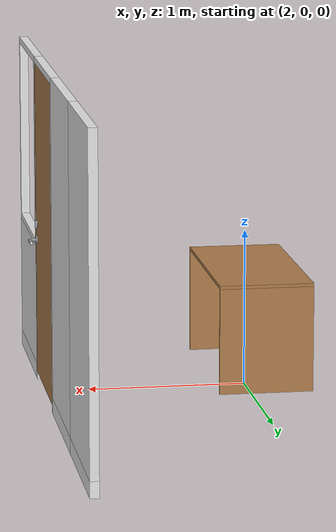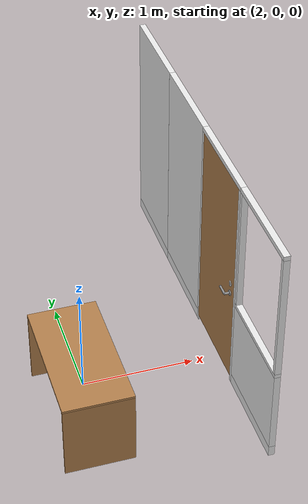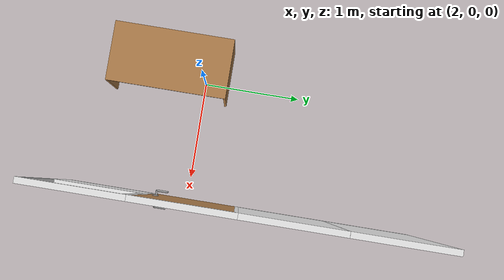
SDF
<sdf version="1.6">
 <world name="default">
  <model name="wall_front_d">
   <link name="link">
    <inertial>
     <mass>50</mass>
     <inertia><ixx>1</ixx><ixy>0</ixy><ixz>0</ixz><iyy>1</iyy><iyz>0</iyz><izz>1</izz></inertia>
    </inertial>
    <visual name="bottom_frame">
     <pose>0 0 0.05 0 -0 0</pose>
     <geometry><box><size>0.055 0.9 0.1</size></box></geometry>
     <material>
      <script><uri>model://base_materials/color/scripts</uri><name>hsr_color/white</name></script>
     </material>
    </visual>
    <collision name="collision_bottom_frame">
     <pose>0 0 0.05 0 -0 0</pose>
     <geometry><box><size>0.055 0.9 0.1</size></box></geometry>
    </collision>
    <visual name="wall">
     <pose>0 0 1.095 0 -0 0</pose>
     <geometry><box><size>0.055 0.9 1.99</size></box></geometry>
     <material>
      <script>
       <uri>model://base_materials/wall/scripts</uri>
       <uri>model://base_materials/wall/textures</uri>
       <name>wall/white_noise</name>
      </script>
     </material>
    </visual>
    <collision name="collision_wall">
     <pose>0 0 1.095 0 -0 0</pose>
     <geometry><box><size>0.055 0.9 1.99</size></box></geometry>
    </collision>
    <velocity_decay><linear>0</linear><angular>0</angular></velocity_decay>
   </link>
   <static>1</static>
   <pose>3.265 1.898 0 0 -0 0</pose>
  </model>
  <model name="wall_front_e">
   <link name="link">
    <inertial>
     <mass>50</mass>
     <inertia><ixx>1</ixx><ixy>0</ixy><ixz>0</ixz><iyy>1</iyy><iyz>0</iyz><izz>1</izz></inertia>
    </inertial>
    <visual name="bottom_frame">
     <pose>0 0 0.05 0 -0 0</pose>
     <geometry><box><size>0.055 0.9 0.1</size></box></geometry>
     <material>
      <script><uri>model://base_materials/color/scripts</uri><name>hsr_color/white</name></script>
     </material>
    </visual>
    <collision name="collision_bottom_frame">
     <pose>0 0 0.05 0 -0 0</pose>
     <geometry><box><size>0.055 0.9 0.1</size></box></geometry>
    </collision>
    <visual name="wall">
     <pose>0 0 1.095 0 -0 0</pose>
     <geometry><box><size>0.055 0.9 1.99</size></box></geometry>
     <material>
      <script>
       <uri>model://base_materials/wall/scripts</uri>
       <uri>model://base_materials/wall/textures</uri>
       <name>wall/white_noise</name>
      </script>
     </material>
    </visual>
    <collision name="collision_wall">
     <pose>0 0 1.095 0 -0 0</pose>
     <geometry><box><size>0.055 0.9 1.99</size></box></geometry>
    </collision>
    <velocity_decay><linear>0</linear><angular>0</angular></velocity_decay>
   </link>
   <static>1</static>
   <pose>3.265 0.9975 0 0 -0 0</pose>
  </model>
  <model name="wall_front_f">
   <link name="link">
    <pose>0 0.45 0 0 -0 0</pose>
    <inertial>
     <mass>50</mass>
     <inertia><ixx>1</ixx><ixy>0</ixy><ixz>0</ixz><iyy>1</iyy><iyz>0</iyz><izz>1</izz></inertia>
    </inertial>
    <visual name="door">
     <pose>0 0 1.05 0 -0 0</pose>
     <geometry><box><size>0.055 0.83 2</size></box></geometry>
     <material>
      <script><uri>model://base_materials/wood/scripts/wood.material</uri><name>base_materials/wood</name></script>
     </material>
    </visual>
    <collision name="collision_door">
     <pose>0 0 1.05 0 -0 0</pose>
     <geometry><box><size>0.055 0.83 2</size></box></geometry>
    </collision>
    <visual name="right_frame">
     <pose>0 0.4325 1.025 0 -0 0</pose>
     <geometry><box><size>0.055 0.035 2.05</size></box></geometry>
     <material>
      <script><uri>model://base_materials/color/scripts</uri><name>hsr_color/white</name></script>
     </material>
    </visual>
    <collision name="collision_right_frame">
     <pose>0 0.4325 1.025 0 -0 0</pose>
     <geometry><box><size>0.055 0.035 2.05</size></box></geometry>
    </collision>
    <visual name="left_frame">
     <pose>0 -0.4325 1.025 0 -0 0</pose>
     <geometry><box><size>0.055 0.035 2.05</size></box></geometry>
     <material>
      <script><uri>model://base_materials/color/scripts</uri><name>hsr_color/white</name></script>
     </material>
    </visual>
    <collision name="collision_left_frame">
     <pose>0 -0.4325 1.025 0 -0 0</pose>
     <geometry><box><size>0.055 0.035 2.05</size></box></geometry>
    </collision>
    <visual name="top_frame">
     <pose>0 0 2.07 0 -0 0</pose>
     <geometry><box><size>0.055 0.9 0.04</size></box></geometry>
     <material>
      <script><uri>model://base_materials/color/scripts</uri><name>hsr_color/white</name></script>
     </material>
    </visual>
    <collision name="collision_top_frame">
     <pose>0 0 2.07 0 -0 0</pose>
     <geometry><box><size>0.055 0.9 0.04</size></box></geometry>
    </collision>
    <visual name="handle_front">
     <pose>0.0775 0.285 0.93 1.5708 -0 0</pose>
     <geometry><cylinder><radius>0.01</radius><length>0.1</length></cylinder></geometry>
     <material>
      <script><uri>model://base_materials/color/scripts</uri><name>hsr_color/grey</name></script>
     </material>
    </visual>
    <collision name="collision_handle_front">
     <pose>0.0775 0.285 0.93 1.5708 -0 0</pose>
     <geometry><cylinder><radius>0.01</radius><length>0.1</length></cylinder></geometry>
    </collision>
    <visual name="handle_back">
     <pose>-0.0775 0.285 0.93 1.5708 -0 0</pose>
     <geometry><cylinder><radius>0.01</radius><length>0.1</length></cylinder></geometry>
     <material>
      <script><uri>model://base_materials/color/scripts</uri><name>hsr_color/grey</name></script>
     </material>
    </visual>
    <collision name="collision_handle_back">
     <pose>-0.0775 0.285 0.93 1.5708 -0 0</pose>
     <geometry><cylinder><radius>0.01</radius><length>0.1</length></cylinder></geometry>
    </collision>
    <visual name="handle_center1">
     <pose>0 0.335 0.93 3.14159 1.57079 3.14159</pose>
     <geometry><cylinder><radius>0.01</radius><length>0.155</length></cylinder></geometry>
     <material>
      <script><uri>model://base_materials/color/scripts</uri><name>hsr_color/grey</name></script>
     </material>
    </visual>
    <collision name="collision_center1">
     <pose>0 0.335 0.93 3.14159 1.57079 3.14159</pose>
     <geometry><cylinder><radius>0.01</radius><length>0.155</length></cylinder></geometry>
    </collision>
    <visual name="handle_center2">
     <pose>0 0.335 0.93 3.14159 1.57079 3.14159</pose>
     <geometry><cylinder><radius>0.025</radius><length>0.075</length></cylinder></geometry>
     <material>
      <script><uri>model://base_materials/color/scripts</uri><name>hsr_color/grey</name></script>
     </material>
    </visual>
    <collision name="collision_center1">
     <pose>0 0.335 0.93 3.14159 1.57079 3.14159</pose>
     <geometry><cylinder><radius>0.025</radius><length>0.075</length></cylinder></geometry>
    </collision>
    <visual name="handle_front_right_corner">
     <pose>0.0775 0.335 0.93 0 -0 0</pose>
     <geometry><sphere><radius>0.01</radius></sphere></geometry>
     <material>
      <script><uri>model://base_materials/color/scripts</uri><name>hsr_color/grey</name></script>
     </material>
    </visual>
    <collision name="collision_handle_front_right_corner">
     <pose>0.0775 0.335 0.93 0 -0 0</pose>
     <geometry><sphere><radius>0.01</radius></sphere></geometry>
    </collision>
    <visual name="handle_front_left_corner">
     <pose>0.0775 0.235 0.93 0 -0 0</pose>
     <geometry><sphere><radius>0.01</radius></sphere></geometry>
     <material>
      <script><uri>model://base_materials/color/scripts</uri><name>hsr_color/grey</name></script>
     </material>
    </visual>
    <collision name="collision_handle_front_left_corner">
     <pose>0.0775 0.235 0.93 0 -0 0</pose>
     <geometry><sphere><radius>0.01</radius></sphere></geometry>
    </collision>
    <visual name="handle_back_right_corner">
     <pose>-0.0775 0.335 0.93 0 -0 0</pose>
     <geometry><sphere><radius>0.01</radius></sphere></geometry>
     <material>
      <script><uri>model://base_materials/color/scripts</uri><name>hsr_color/grey</name></script>
     </material>
    </visual>
    <collision name="collision_handle_back_right_corner">
     <pose>-0.0775 0.335 0.93 0 -0 0</pose>
     <geometry><sphere><radius>0.01</radius></sphere></geometry>
    </collision>
    <visual name="handle_back_left_corner">
     <pose>-0.0775 0.235 0.93 0 -0 0</pose>
     <geometry><sphere><radius>0.01</radius></sphere></geometry>
     <material>
      <script><uri>model://base_materials/color/scripts</uri><name>hsr_color/white</name></script>
     </material>
    </visual>
    <collision name="collision_handle_back_left_corner">
     <pose>-0.0775 0.235 0.93 0 -0 0</pose>
     <geometry><sphere><radius>0.01</radius></sphere></geometry>
    </collision>
    <visual name="handle_lock1">
     <pose>0 0.335 1.03 0 -0 0</pose>
     <geometry><box><size>0.075 0.005 0.04</size></box></geometry>
     <material>
      <script><uri>model://base_materials/color/scripts</uri><name>hsr_color/white</name></script>
     </material>
    </visual>
    <collision name="collision_handle_lock1">
     <pose>0 0.335 1.03 0 -0 0</pose>
     <geometry><box><size>0.075 0.005 0.04</size></box></geometry>
    </collision>
    <visual name="handle_lock2">
     <pose>0 0.335 1.03 3.14159 1.57079 3.14159</pose>
     <geometry><cylinder><radius>0.025</radius><length>0.065</length></cylinder></geometry>
     <material>
      <script><uri>model://base_materials/color/scripts</uri><name>hsr_color/white</name></script>
     </material>
    </visual>
    <collision name="collision_handle_lock1">
     <pose>0 0.335 1.03 3.14159 1.57079 3.14159</pose>
     <geometry><cylinder><radius>0.025</radius><length>0.065</length></cylinder></geometry>
    </collision>
    <velocity_decay><linear>0</linear><angular>0</angular></velocity_decay>
   </link>
   <static>1</static>
   <pose>3.265 0.5475 0 0 -0 3.14159</pose>
  </model>
  <model name="wall_front_g">
   <link name="link">
    <inertial>
     <mass>50</mass>
     <inertia><ixx>1</ixx><ixy>0</ixy><ixz>0</ixz><iyy>1</iyy><iyz>0</iyz><izz>1</izz></inertia>
    </inertial>
    <visual name="bottom_frame">
     <pose>0 0 0.05 0 -0 0</pose>
     <geometry><box><size>0.055 0.9 0.1</size></box></geometry>
     <material>
      <script><uri>model://base_materials/color/scripts</uri><name>hsr_color/white</name></script>
     </material>
    </visual>
    <collision name="collision_bottom_frame">
     <pose>0 0 0.05 0 -0 0</pose>
     <geometry><box><size>0.055 0.9 0.1</size></box></geometry>
    </collision>
    <visual name="wall">
     <pose>0 0 0.4875 0 -0 0</pose>
     <geometry><box><size>0.055 0.9 0.775</size></box></geometry>
     <material>
      <script>
       <uri>model://base_materials/wall/scripts</uri>
       <uri>model://base_materials/wall/textures</uri>
       <name>wall/white_noise</name>
      </script>
     </material>
    </visual>
    <collision name="collision_wall">
     <pose>0 0 0.4875 0 -0 0</pose>
     <geometry><box><size>0.055 0.9 0.775</size></box></geometry>
    </collision>
    <visual name="center_frame">
     <pose>0 0 0.8925 0 -0 0</pose>
     <geometry><box><size>0.055 0.9 0.035</size></box></geometry>
     <material>
      <script><uri>model://base_materials/color/scripts</uri><name>hsr_color/white</name></script>
     </material>
    </visual>
    <collision name="collision_center_frame">
     <pose>0 0 0.8925 0 -0 0</pose>
     <geometry><box><size>0.055 0.9 0.035</size></box></geometry>
    </collision>
    <visual name="right_frame">
     <pose>0 0.4325 1.48 0 -0 0</pose>
     <geometry><box><size>0.055 0.035 1.14</size></box></geometry>
     <material>
      <script><uri>model://base_materials/color/scripts</uri><name>hsr_color/white</name></script>
     </material>
    </visual>
    <collision name="collision_right_frame">
     <pose>0 0.4325 1.48 0 -0 0</pose>
     <geometry><box><size>0.055 0.035 1.14</size></box></geometry>
    </collision>
    <visual name="left_frame">
     <pose>0 -0.4325 1.48 0 -0 0</pose>
     <geometry><box><size>0.055 0.035 1.14</size></box></geometry>
     <material>
      <script><uri>model://base_materials/color/scripts</uri><name>hsr_color/white</name></script>
     </material>
    </visual>
    <collision name="collision_left_frame">
     <pose>0 -0.4325 1.48 0 -0 0</pose>
     <geometry><box><size>0.055 0.035 1.14</size></box></geometry>
    </collision>
    <visual name="top_frame">
     <pose>0 0 2.07 0 -0 0</pose>
     <geometry><box><size>0.055 0.9 0.04</size></box></geometry>
     <material>
      <script><uri>model://base_materials/color/scripts</uri><name>hsr_color/white</name></script>
     </material>
    </visual>
    <collision name="collision_top_frame">
     <pose>0 0 2.07 0 -0 0</pose>
     <geometry><box><size>0.055 0.9 0.04</size></box></geometry>
    </collision>
    <velocity_decay><linear>0</linear><angular>0</angular></velocity_decay>
   </link>
   <static>1</static>
   <pose>3.265 -0.8025 0 0 -0 0</pose>
  </model>
  <model name="office_desk">
   <link name="link">
    <inertial>
     <mass>10</mass>
     <inertia><ixx>1</ixx><ixy>0</ixy><ixz>0</ixz><iyy>1</iyy><iyz>0</iyz><izz>1</izz></inertia>
    </inertial>
    <visual name="top_board">
     <pose>-0.3 0.6 0.69 0 -0 0</pose>
     <geometry><box><size>0.6 1.2 0.02</size></box></geometry>
     <material>
      <script>
       <uri>model://base_materials/wood/scripts/wood.material</uri>
       <name>base_materials/dark_wood</name>
      </script>
     </material>
    </visual>
    <collision name="collision_top_board">
     <pose>-0.3 0.6 0.69 0 -0 0</pose>
     <geometry><box><size>0.6 1.2 0.02</size></box></geometry>
    </collision>
    <visual name="left_board">
     <pose>-0.3 0.01 0.34 0 -0 0</pose>
     <geometry><box><size>0.6 0.02 0.68</size></box></geometry>
     <material>
      <script>
       <uri>model://base_materials/wood/scripts/wood.material</uri>
       <name>base_materials/dark_wood</name>
      </script>
     </material>
    </visual>
    <collision name="collision_left_board">
     <pose>-0.3 0.01 0.34 0 -0 0</pose>
     <geometry><box><size>0.6 0.02 0.68</size></box></geometry>
    </collision>
    <visual name="right_board">
     <pose>-0.3 1.19 0.34 0 -0 0</pose>
     <geometry><box><size>0.6 0.02 0.68</size></box></geometry>
     <material>
      <script>
       <uri>model://base_materials/wood/scripts/wood.material</uri>
       <name>base_materials/dark_wood</name>
      </script>
     </material>
    </visual>
    <collision name="collision_right_board">
     <pose>-0.3 1.19 0.34 0 -0 0</pose>
     <geometry><box><size>0.6 0.02 0.68</size></box></geometry>
    </collision>
    <visual name="center_board">
     <pose>-0.14 0.6 0.49 0 -0 0</pose>
     <geometry><box><size>0.02 1.16 0.4</size></box></geometry>
     <material>
      <script>
       <uri>model://base_materials/wood/scripts/wood.material</uri>
       <name>base_materials/dark_wood</name>
      </script>
     </material>
    </visual>
    <collision name="ollision_center_board">
     <pose>-0.14 0.6 0.49 0 -0 0</pose>
     <geometry><box><size>0.02 1.16 0.4</size></box></geometry>
    </collision>
    <velocity_decay><linear>0</linear><angular>0</angular></velocity_decay>
   </link>
   <static>1</static>
   <pose>1.6 0.25 0 0 -0 3.14</pose>
  </model>
 </world>
</sdf>
